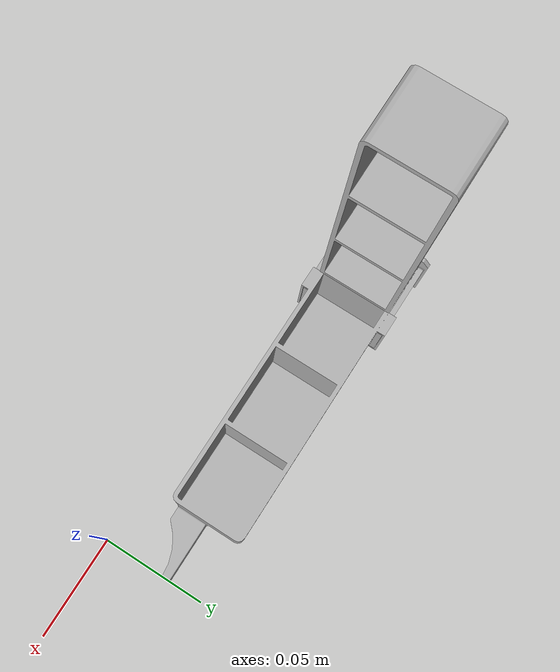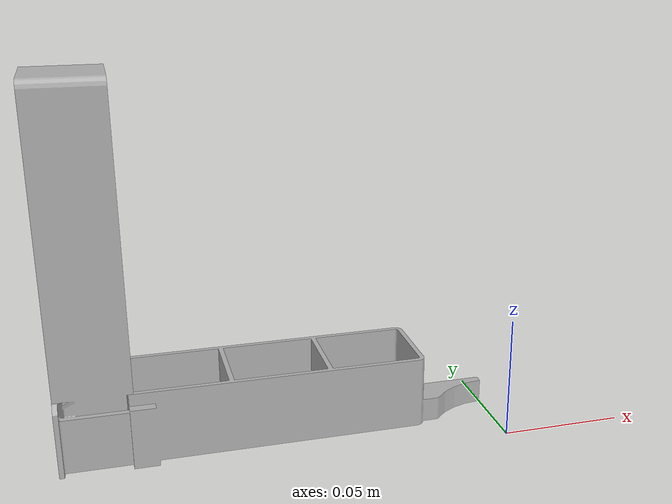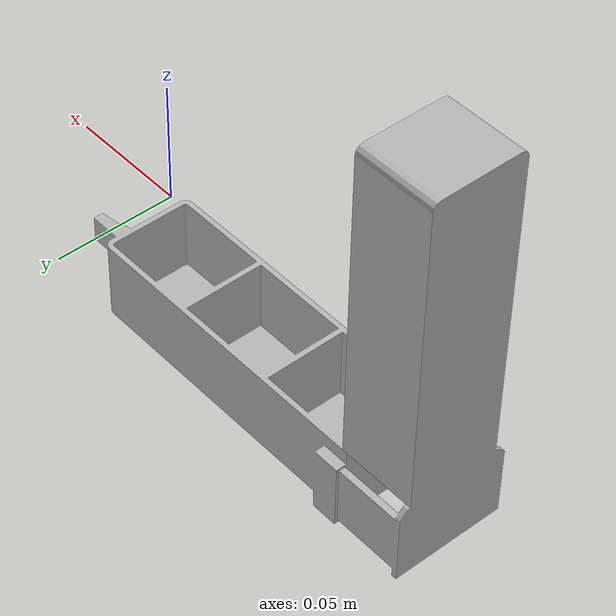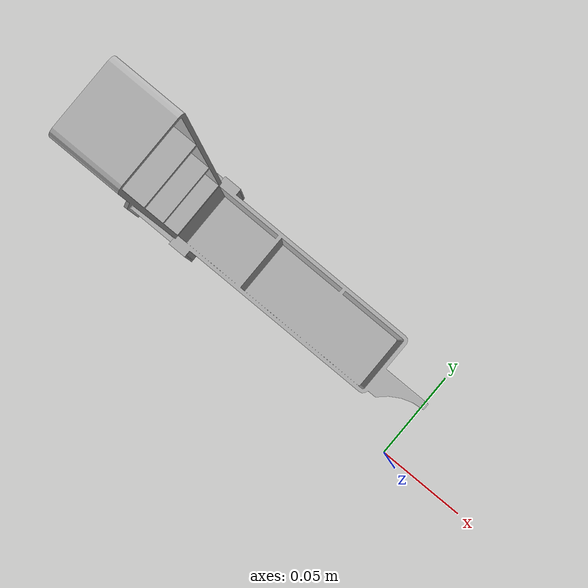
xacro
<?xml version="1.0" encoding="utf-8"?>

<robot name="compartments">

  <link name="world"/>

  <link name="lower_compartment">
    <inertial>
      <origin
        xyz="-0.085357 0.011079 -0.033374"
        rpy="0 0 0" />
      <mass
        value="0.036014" />
      <inertia
        ixx="9.3066E-06"
        ixy="1.3731E-06"
        ixz="-1.0244E-06"
        iyy="6.7056E-05"
        iyz="9.7796E-08"
        izz="6.4144E-05" />
    </inertial>
    <visual>
      <origin
        xyz="0 0 0"
        rpy="0 0 0" />
      <geometry>
        <mesh
          filename="package://r2b_env/meshes/lower_compartment.STL" />
      </geometry>
      <material
        name="">
        <color
          rgba="0.69804 0.69804 0.69804 1" />
      </material>
    </visual>
    <collision>
      <origin
        xyz="0 0 0"
        rpy="0 0 0" />
      <geometry>
        <mesh
          filename="package://r2b_env/meshes/lower_compartment.STL" />
      </geometry>
    </collision>
  </link>

  <joint name="fixed" type="fixed">
		<origin xyz="0.0 0.0 0.0" rpy="1.5708 0.0 0.0"/>
		<parent link="world"/>
		<child link="lower_compartment"/>
	</joint>

  <link name="upper_compartment">
    <inertial>
      <origin
        xyz="-0.16624 0.075165 -0.033821"
        rpy="0 0 0" />
      <mass
        value="0.039976" />
      <inertia
        ixx="8.8652E-05"
        ixy="4.7395E-07"
        ixz="3.6545E-13"
        iyy="1.1987E-05"
        iyz="1.3456E-12"
        izz="8.4976E-05" />
    </inertial>
    <visual>
      <origin
        xyz="0 0 0"
        rpy="0 0 0" />
      <geometry>
        <mesh
          filename="package://r2b_env/meshes/upper_compartment.STL" />
      </geometry>
      <material
        name="">
        <color
          rgba="0.69804 0.69804 0.69804 1" />
      </material>
    </visual>
    <collision>
      <origin
        xyz="0 0 0"
        rpy="0 0 0" />
      <geometry>
        <mesh
          filename="package://r2b_env/meshes/upper_compartment.STL" />
      </geometry>
    </collision>
  </link>

  <joint
    name="upper_compartment_jnt"
    type="fixed">
    <origin
      xyz="0 0 0"
      rpy="0 0 0" />
    <parent
      link="lower_compartment" />
    <child
      link="upper_compartment" />
  </joint>

  <gazebo reference="upper_compartment_jnt">
		<preserveFixedJoint>true</preserveFixedJoint>
	</gazebo>

  <gazebo reference="lower_compartment">
      <material>Gazebo/Yellow</material>
  </gazebo>

  <gazebo reference="upper_compartment">
      <material>Gazebo/Yellow</material>
  </gazebo>

  <gazebo>
    <static>true</static>
  </gazebo>

</robot>
